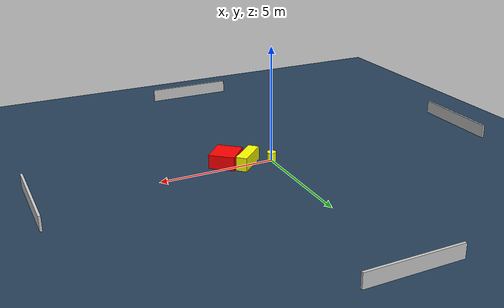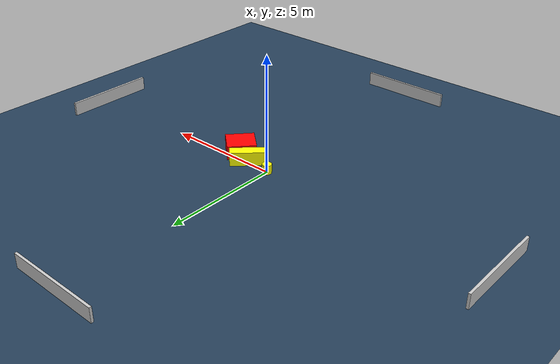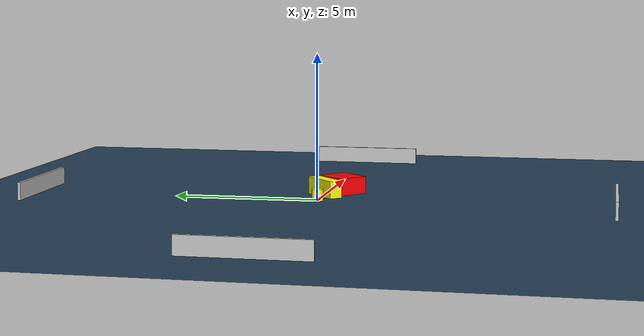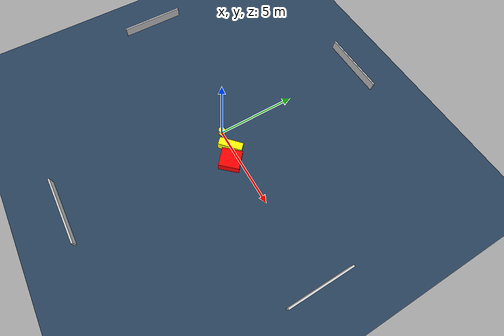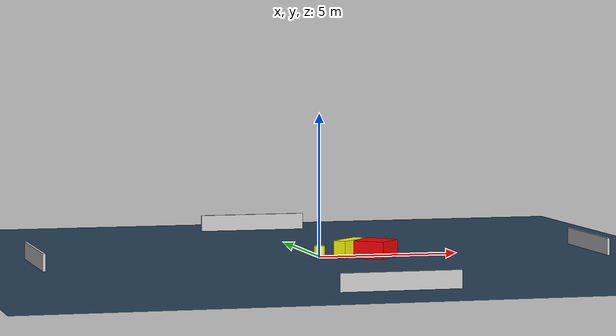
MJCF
<?xml version="1.0" ?>
<mujoco model="generated_environment">
  <option timestep="0.01" integrator="RK4" cone="elliptic"/>
  <default>
    <geom density="1"/>
  </default>
  <asset>
    <texture builtin="gradient" height="3072" name="skybox" rgb1="0.3 0.5 0.7" rgb2="0 0 0" type="skybox" width="512"/>
    <texture builtin="checker" height="300" name="groundplane" rgb1="0.2 0.3 0.4" rgb2="0.1 0.2 0.3" type="2d" width="300"/>
    <material name="groundplane" reflectance="0.2" texrepeat="5 5" texture="groundplane"/>
  </asset>
  <worldbody>
    <light dir="0 0 -1" directional="true" pos="0 0 1.5"/>
    <geom condim="3" friction="0.5 0.005 0.001" material="groundplane" name="floor" pos="0 0 0" size="0 0 0.05" type="plane"/>
    <body name="walls">
      <geom name="wall_1" condim="4" pos="-10.0 0.0 0.3" rgba="0.800000011920929 0.800000011920929 0.800000011920929 1.0" size="0.05 2.0 0.3" type="box"/>
      <geom name="wall_2" condim="4" pos="10.0 0.0 0.3" rgba="0.800000011920929 0.800000011920929 0.800000011920929 1.0" size="0.05 2.0 0.3" type="box"/>
      <geom name="wall_3" condim="4" pos="0.0 -10.0 0.3" rgba="0.800000011920929 0.800000011920929 0.800000011920929 1.0" size="2.0 0.05 0.3" type="box"/>
      <geom name="wall_4" condim="4" pos="0.0 10.0 0.3" rgba="0.800000011920929 0.800000011920929 0.800000011920929 1.0" size="2.0 0.05 0.3" type="box"/>
    </body>
    <body name="robot">
      <joint name="joint_x" type="slide" pos="0 0 0" axis="1 0 0"/>
      <joint name="joint_y" type="slide" pos="0 0 0" axis="0 1 0"/>
      <geom name="robot" type="cylinder" pos="0.0 0.0 0.2" size="0.2 0.2 0.0" mass="5.0" friction="1.0 0.005 0.0001" condim="4" rgba="1.0 1.0 0.0 1.0"/>
    </body>
    <body name="obstacle_1_movable">
      <geom name="obstacle_1_movable" condim="4" pos="1.1135575220560359 -0.035106451498963014 0.3" euler="0 0 223.5803378297384" friction="0.0 0.005 0.001" rgba="1.0 1.0 0.0 1.0" size="0.7201551922624208 0.2363706738065533 0.3" type="box" mass="0.1"/>
      <joint type="free"/>
    </body>
    <body name="obstacle_2_static">
      <geom name="obstacle_2_static" condim="4" pos="1.9117964171168236 -0.5053070502754472 0.3" euler="0 0 48.47183213185958" friction="0.0 0.005 0.001" rgba="1.0 0.0 0.0 1.0" size="0.6117191059519256 0.5639609395710774 0.3" type="box"/>
    </body>
  </worldbody>
  <actuator>
    <motor name="actuator_x" joint="joint_x" gear="1" ctrlrange="-1 1"/>
    <motor name="actuator_y" joint="joint_y" gear="1" ctrlrange="-1 1"/>
  </actuator>
</mujoco>
